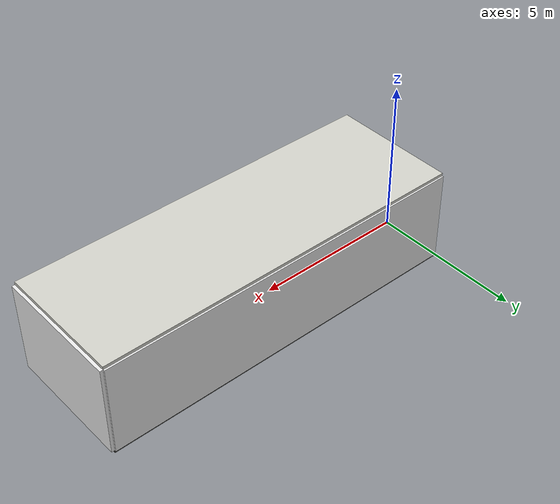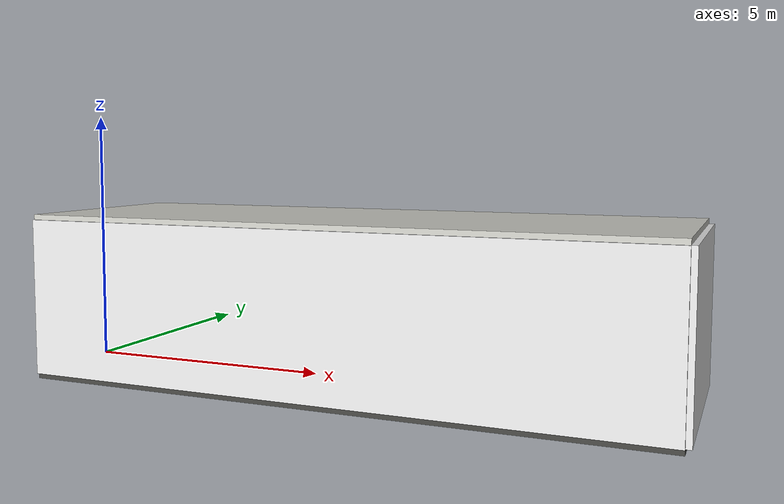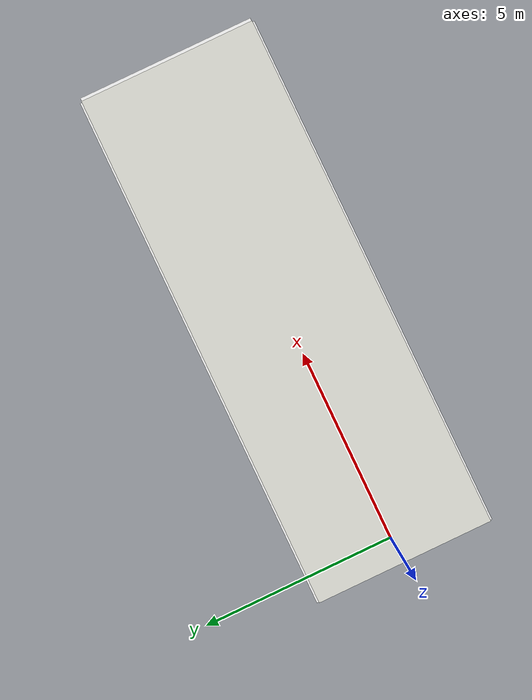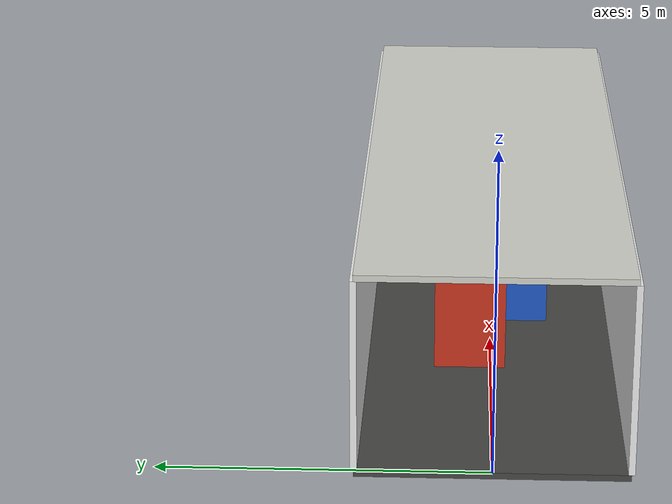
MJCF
<mujoco model="TinyRacer indoor obstacle corridor">
  <option integrator="RK4" density="1.225" viscosity="1.8e-5" timestep="0.001"/>
  <compiler inertiafromgeom="false" autolimits="true"/>
  <statistic center="6 0 1.5" extent="7"/>
  <visual>
    <headlight diffuse="0.12 0.12 0.12" ambient="0.08 0.08 0.08"
               specular="0 0 0"/>
    <rgba haze="0.03 0.03 0.03 0" fog="1 1 1 0"/>
    <map fogstart="0" fogend="0"/>
    <global azimuth="135" elevation="-18" ellipsoidinertia="true"/>
  </visual>
  <asset>
    <texture name="corridor_floor_texture" type="2d" builtin="checker"
             rgb1="0.31 0.31 0.30" rgb2="0.23 0.23 0.22"
             width="512" height="512"/>
    <texture name="corridor_wall_texture" type="2d"
             file="textures/off_white_painted_plaster.png"/>
    <material name="corridor_floor" texture="corridor_floor_texture"
              texrepeat="12 4" texuniform="true" reflectance="0.12"
              specular="0.18" shininess="0.25"/>
    <material name="corridor_wall" texture="corridor_wall_texture"
              texrepeat="6 2" texuniform="true" rgba="1 1 1 1"
              specular="0.08" shininess="0.12"/>
    <material name="corridor_ceiling" rgba="0.82 0.82 0.79 1"
              specular="0.04" shininess="0.08"/>
    <material name="strip_light" rgba="1 0.98 0.86 1"
              emission="1" specular="0" shininess="0"/>
  </asset>
  <worldbody>
    <camera name="obstacle_corridor_preview" pos="0 0 1.5"
            xyaxes="0 -1 0 0 0 1" fovy="47.168554"/>

    <!-- Clear interior: x=0..12 m, y=-2..2 m, z=0..3 m. -->
    <geom name="corridor_floor" type="box" pos="6 0 -0.05"
          size="6 2.05 0.05" material="corridor_floor"
          contype="1" conaffinity="1"/>
    <geom name="corridor_left_wall" type="box" pos="6 2.05 1.5"
          size="6 1.5 0.05" euler="90 0 0" material="corridor_wall"
          contype="1" conaffinity="1"/>
    <geom name="corridor_right_wall" type="box" pos="6 -2.05 1.5"
          size="6 1.5 0.05" euler="90 0 0" material="corridor_wall"
          contype="1" conaffinity="1"/>
    <geom name="corridor_end_wall" type="box" pos="12.05 0 1.5"
          size="1.5 2.05 0.05" euler="0 90 0" material="corridor_wall"
          contype="1" conaffinity="1"/>
    <geom name="corridor_ceiling" type="box" pos="6 0 3.05"
          size="6 2.05 0.05" material="corridor_ceiling"
          contype="1" conaffinity="1"/>

    <!-- Four tall, staggered pylons cross the nominal y=0 flight line. Each
         leaves more than one metre of free corridor on its open side. -->
    <geom name="obstacle_1_right_open" type="box" pos="2.5 0.35 1.5"
          size="0.15 0.55 0.85" rgba="0.78 0.20 0.12 1"
          contype="1" conaffinity="1"/>
    <geom name="obstacle_2_left_open" type="box" pos="4.4 -0.35 1.5"
          size="0.15 0.55 0.85" rgba="0.12 0.34 0.76 1"
          contype="1" conaffinity="1"/>
    <geom name="obstacle_3_right_open" type="box" pos="6.3 0.35 1.5"
          size="0.15 0.55 0.85" rgba="0.82 0.55 0.10 1"
          contype="1" conaffinity="1"/>
    <geom name="obstacle_4_left_open" type="box" pos="8.2 -0.35 1.5"
          size="0.15 0.55 0.85" rgba="0.20 0.62 0.26 1"
          contype="1" conaffinity="1"/>

    <geom name="ceiling_strip_light" type="box" pos="6 0 2.985"
          size="5.5 0.055 0.015" material="strip_light"
          contype="0" conaffinity="0"/>
    <light name="strip_light_1" pos="1 0 2.94" dir="0 0 -1"
           diffuse="0.85 0.82 0.72" specular="0.12 0.12 0.10"
           cutoff="75" exponent="1" attenuation="0.25 0.08 0.02"
           castshadow="true"/>
    <light name="strip_light_2" pos="3.5 0 2.94" dir="0 0 -1"
           diffuse="0.85 0.82 0.72" specular="0.12 0.12 0.10"
           cutoff="75" exponent="1" attenuation="0.25 0.08 0.02"
           castshadow="true"/>
    <light name="strip_light_3" pos="6 0 2.94" dir="0 0 -1"
           diffuse="0.85 0.82 0.72" specular="0.12 0.12 0.10"
           cutoff="75" exponent="1" attenuation="0.25 0.08 0.02"
           castshadow="true"/>
    <light name="strip_light_4" pos="8.5 0 2.94" dir="0 0 -1"
           diffuse="0.85 0.82 0.72" specular="0.12 0.12 0.10"
           cutoff="75" exponent="1" attenuation="0.25 0.08 0.02"
           castshadow="true"/>
    <light name="strip_light_5" pos="11 0 2.94" dir="0 0 -1"
           diffuse="0.85 0.82 0.72" specular="0.12 0.12 0.10"
           cutoff="75" exponent="1" attenuation="0.25 0.08 0.02"
           castshadow="true"/>
  </worldbody>
</mujoco>
